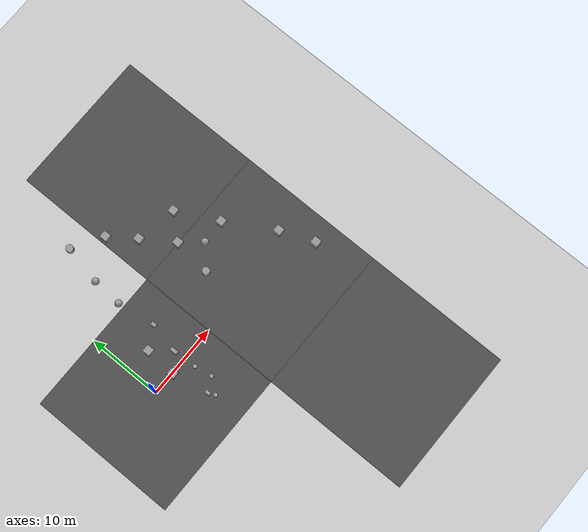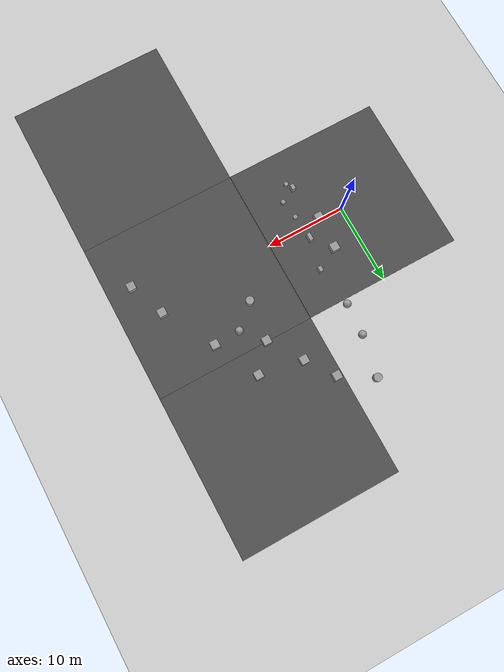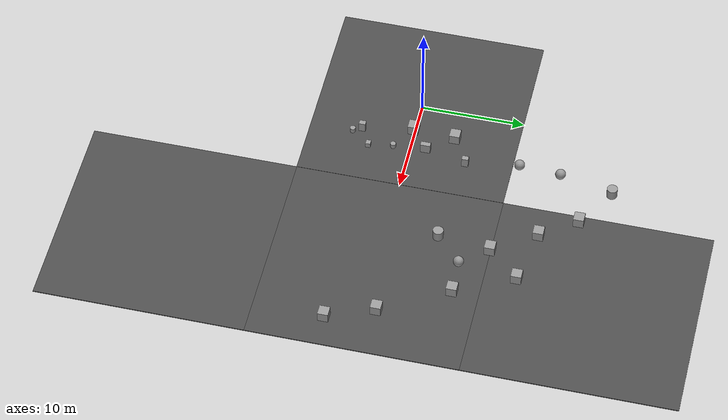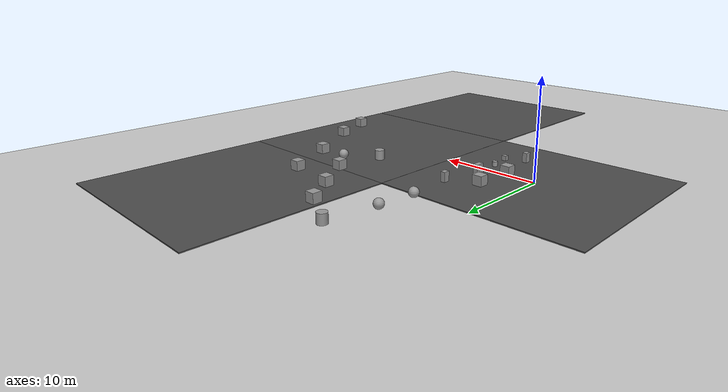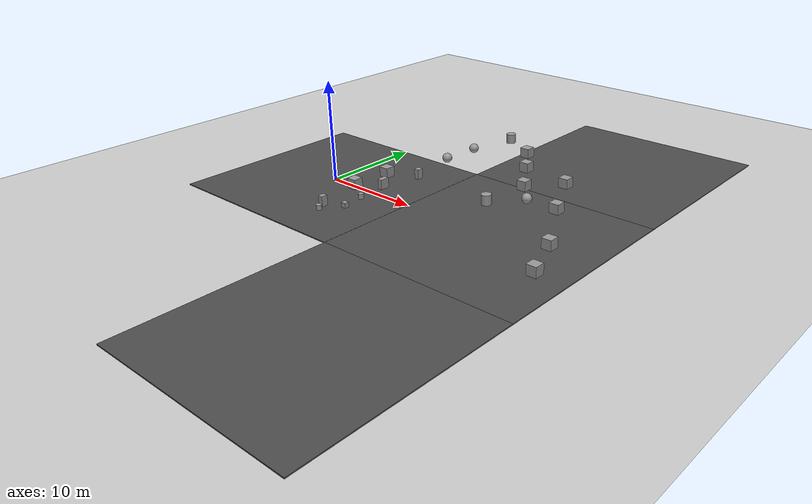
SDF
<sdf version="1.7">
 <world name="default">
  <model name="ground_plane">
   <static>1</static>
   <link name="link">
    <collision name="collision">
     <geometry><plane><normal>0 0 1</normal><size>100 100</size></plane></geometry>
     <surface>
      <contact><collide_bitmask>65535</collide_bitmask></contact>
      <friction><ode><mu>100</mu><mu2>50</mu2></ode></friction>
     </surface>
    </collision>
    <visual name="visual">
     <cast_shadows>0</cast_shadows>
     <geometry><plane><normal>0 0 1</normal><size>100 100</size></plane></geometry>
     <material>
      <script><uri>file://media/materials/scripts/gazebo.material</uri><name>Gazebo/Grey</name></script>
     </material>
    </visual>
   </link>
  </model>
  <model name="asphalt_plane">
   <static>1</static>
   <link name="link">
    <collision name="collision"><geometry><box><size>20 20 0.1</size></box></geometry></collision>
    <visual name="visual">
     <cast_shadows>0</cast_shadows>
     <geometry><box><size>20 20 0.1</size></box></geometry>
     <material>
      <script>
       <uri>model://asphalt_plane/materials/scripts</uri>
       <uri>model://asphalt_plane/materials/textures</uri>
       <name>vrc/asphalt</name>
      </script>
     </material>
    </visual>
   </link>
   <pose>-0.014859 -0.026662 0 0 -0 0</pose>
  </model>
  <model name="asphalt_plane_clone">
   <static>1</static>
   <link name="link">
    <collision name="collision"><geometry><box><size>20 20 0.1</size></box></geometry></collision>
    <visual name="visual">
     <cast_shadows>0</cast_shadows>
     <geometry><box><size>20 20 0.1</size></box></geometry>
     <material>
      <script>
       <uri>model://asphalt_plane/materials/scripts</uri>
       <uri>model://asphalt_plane/materials/textures</uri>
       <name>vrc/asphalt</name>
      </script>
     </material>
    </visual>
   </link>
   <pose>20 0 0 0 -0 0</pose>
  </model>
  <model name="asphalt_plane_clone_0">
   <static>1</static>
   <link name="link">
    <collision name="collision"><geometry><box><size>20 20 0.1</size></box></geometry></collision>
    <visual name="visual">
     <cast_shadows>0</cast_shadows>
     <geometry><box><size>20 20 0.1</size></box></geometry>
     <material>
      <script>
       <uri>model://asphalt_plane/materials/scripts</uri>
       <uri>model://asphalt_plane/materials/textures</uri>
       <name>vrc/asphalt</name>
      </script>
     </material>
    </visual>
   </link>
   <pose>20 -20 0 0 -0 0</pose>
  </model>
  <model name="asphalt_plane_clone_6">
   <static>1</static>
   <link name="link">
    <collision name="collision"><geometry><box><size>20 20 0.1</size></box></geometry></collision>
    <visual name="visual">
     <cast_shadows>0</cast_shadows>
     <geometry><box><size>20 20 0.1</size></box></geometry>
     <material>
      <script>
       <uri>model://asphalt_plane/materials/scripts</uri>
       <uri>model://asphalt_plane/materials/textures</uri>
       <name>vrc/asphalt</name>
      </script>
     </material>
    </visual>
   </link>
   <pose>20 20 0 0 -0 0</pose>
  </model>
  <model name="unit_box">
   <pose>3.3249 3.92528 0.549995 0 1e-05 -1e-06</pose>
   <link name="link">
    <inertial>
     <mass>1</mass>
     <inertia>
      <ixx>0.166667</ixx>
      <ixy>0</ixy>
      <ixz>0</ixz>
      <iyy>0.166667</iyy>
      <iyz>0</iyz>
      <izz>0.166667</izz>
     </inertia>
    </inertial>
    <collision name="collision"><geometry><box><size>1 1 1</size></box></geometry></collision>
    <visual name="visual">
     <geometry><box><size>1 1 1</size></box></geometry>
     <material>
      <script><name>Gazebo/Grey</name><uri>file://media/materials/scripts/gazebo.material</uri></script>
     </material>
    </visual>
   </link>
  </model>
  <model name="unit_cylinder_clone_5">
   <pose>5.50007 -1.65315 0.294825 0 -0 0.001184</pose>
   <link name="link">
    <inertial>
     <mass>1</mass>
     <inertia><ixx>0.145833</ixx><ixy>0</ixy><ixz>0</ixz><iyy>0.145833</iyy><iyz>0</iyz><izz>0.125</izz></inertia>
    </inertial>
    <collision name="collision">
     <geometry><cylinder><radius>0.264047</radius><length>0.48967</length></cylinder></geometry>
    </collision>
    <visual name="visual">
     <geometry><cylinder><radius>0.264047</radius><length>0.48967</length></cylinder></geometry>
     <material>
      <script><name>Gazebo/Grey</name><uri>file://media/materials/scripts/gazebo.material</uri></script>
     </material>
    </visual>
   </link>
  </model>
  <model name="unit_box_0_clone_1_clone_2">
   <pose>5.86986 -3.99988 0.301356 0 -0 0.014538</pose>
   <link name="link">
    <inertial>
     <mass>1</mass>
     <inertia>
      <ixx>0.166667</ixx>
      <ixy>0</ixy>
      <ixz>0</ixz>
      <iyy>0.166667</iyy>
      <iyz>0</iyz>
      <izz>0.166667</izz>
     </inertia>
    </inertial>
    <collision name="collision">
     <geometry><box><size>0.495294 0.467832 0.502712</size></box></geometry>
    </collision>
    <visual name="visual">
     <geometry><box><size>0.495294 0.467832 0.502712</size></box></geometry>
     <material>
      <script><name>Gazebo/Grey</name><uri>file://media/materials/scripts/gazebo.material</uri></script>
     </material>
    </visual>
   </link>
  </model>
  <model name="unit_box_3_clone_3">
   <pose>4 -5 0.55 0 -0 0</pose>
   <link name="link">
    <inertial>
     <mass>1</mass>
     <inertia>
      <ixx>0.166667</ixx>
      <ixy>0</ixy>
      <ixz>0</ixz>
      <iyy>0.166667</iyy>
      <iyz>0</iyz>
      <izz>0.166667</izz>
     </inertia>
    </inertial>
    <collision name="collision"><geometry><box><size>0.473217 0.637104 1</size></box></geometry></collision>
    <visual name="visual">
     <geometry><box><size>0.473217 0.637104 1</size></box></geometry>
     <material>
      <script><name>Gazebo/Grey</name><uri>file://media/materials/scripts/gazebo.material</uri></script>
     </material>
    </visual>
   </link>
  </model>
  <model name="unit_box_4">
   <pose>15.9542 9.93419 0.549996 -7e-06 -0 -1e-05</pose>
   <link name="link">
    <inertial>
     <mass>1</mass>
     <inertia>
      <ixx>0.166667</ixx>
      <ixy>0</ixy>
      <ixz>0</ixz>
      <iyy>0.166667</iyy>
      <iyz>0</iyz>
      <izz>0.166667</izz>
     </inertia>
    </inertial>
    <collision name="collision"><geometry><box><size>1 1 1</size></box></geometry></collision>
    <visual name="visual">
     <geometry><box><size>1 1 1</size></box></geometry>
     <material>
      <script><name>Gazebo/Grey</name><uri>file://media/materials/scripts/gazebo.material</uri></script>
     </material>
    </visual>
   </link>
  </model>
  <model name="unit_sphere">
   <link name="link">
    <inertial>
     <mass>1.41372</mass>
     <inertia>
      <ixx>0.141372</ixx>
      <ixy>0</ixy>
      <ixz>0</ixz>
      <iyy>0.141372</iyy>
      <iyz>0</iyz>
      <izz>0.141372</izz>
     </inertia>
    </inertial>
    <visual name="visual">
     <geometry><sphere><radius>0.5</radius></sphere></geometry>
     <material>
      <script><name>Gazebo/Grey</name><uri>file://media/materials/scripts/gazebo.material</uri></script>
      <shader type="pixel"><normal_map>__default__</normal_map></shader>
     </material>
    </visual>
    <collision name="collision">
     <geometry><sphere><radius>0.5</radius></sphere></geometry>
     <surface>
      <friction>
       <ode><mu>1</mu><mu2>1</mu2><fdir1>0 0 0</fdir1><slip1>0</slip1><slip2>0</slip2></ode>
       <torsional>
        <coefficient>1</coefficient>
        <patch_radius>0</patch_radius>
        <surface_radius>0</surface_radius>
        <use_patch_radius>1</use_patch_radius>
        <ode><slip>0</slip></ode>
       </torsional>
      </friction>
      <bounce><restitution_coefficient>0</restitution_coefficient><threshold>1e+06</threshold></bounce>
      <contact>
       <collide_without_contact>0</collide_without_contact>
       <collide_without_contact_bitmask>1</collide_without_contact_bitmask>
       <collide_bitmask>1</collide_bitmask>
       <ode>
        <soft_cfm>0</soft_cfm>
        <soft_erp>0.2</soft_erp>
        <kp>1e+13</kp>
        <kd>1</kd>
        <max_vel>0.01</max_vel>
        <min_depth>0</min_depth>
       </ode>
       <bullet>
        <split_impulse>1</split_impulse>
        <split_impulse_penetration_threshold>-0.01</split_impulse_penetration_threshold>
        <soft_cfm>0</soft_cfm>
        <soft_erp>0.2</soft_erp>
        <kp>1e+13</kp>
        <kd>1</kd>
       </bullet>
      </contact>
     </surface>
    </collision>
   </link>
   <static>0</static>
   <pose>5.71347 14.6249 0.55 0 -0 0</pose>
  </model>
  <model name="unit_sphere_clone">
   <link name="link">
    <inertial>
     <mass>1.41372</mass>
     <inertia>
      <ixx>0.141372</ixx>
      <ixy>0</ixy>
      <ixz>0</ixz>
      <iyy>0.141372</iyy>
      <iyz>0</iyz>
      <izz>0.141372</izz>
     </inertia>
    </inertial>
    <visual name="visual">
     <geometry><sphere><radius>0.5</radius></sphere></geometry>
     <material>
      <script><name>Gazebo/Grey</name><uri>file://media/materials/scripts/gazebo.material</uri></script>
      <shader type="pixel"><normal_map>__default__</normal_map></shader>
     </material>
    </visual>
    <collision name="collision">
     <geometry><sphere><radius>0.5</radius></sphere></geometry>
     <surface>
      <friction>
       <ode><mu>1</mu><mu2>1</mu2><fdir1>0 0 0</fdir1><slip1>0</slip1><slip2>0</slip2></ode>
       <torsional>
        <coefficient>1</coefficient>
        <patch_radius>0</patch_radius>
        <surface_radius>0</surface_radius>
        <use_patch_radius>1</use_patch_radius>
        <ode><slip>0</slip></ode>
       </torsional>
      </friction>
      <bounce><restitution_coefficient>0</restitution_coefficient><threshold>1e+06</threshold></bounce>
      <contact>
       <collide_without_contact>0</collide_without_contact>
       <collide_without_contact_bitmask>1</collide_without_contact_bitmask>
       <collide_bitmask>1</collide_bitmask>
       <ode>
        <soft_cfm>0</soft_cfm>
        <soft_erp>0.2</soft_erp>
        <kp>1e+13</kp>
        <kd>1</kd>
        <max_vel>0.01</max_vel>
        <min_depth>0</min_depth>
       </ode>
       <bullet>
        <split_impulse>1</split_impulse>
        <split_impulse_penetration_threshold>-0.01</split_impulse_penetration_threshold>
        <soft_cfm>0</soft_cfm>
        <soft_erp>0.2</soft_erp>
        <kp>1e+13</kp>
        <kd>1</kd>
       </bullet>
      </contact>
     </surface>
    </collision>
   </link>
   <static>0</static>
   <pose>5.44361 10.6261 0.55 0 -0 0</pose>
  </model>
  <model name="unit_cylinder_0">
   <pose>15.381 4.88172 0.54999 -0 -0 -1e-06</pose>
   <link name="link">
    <inertial>
     <mass>1</mass>
     <inertia><ixx>0.145833</ixx><ixy>0</ixy><ixz>0</ixz><iyy>0.145833</iyy><iyz>0</iyz><izz>0.125</izz></inertia>
    </inertial>
    <collision name="collision">
     <geometry><cylinder><radius>0.5</radius><length>1</length></cylinder></geometry>
    </collision>
    <visual name="visual">
     <geometry><cylinder><radius>0.5</radius><length>1</length></cylinder></geometry>
     <material>
      <script><name>Gazebo/Grey</name><uri>file://media/materials/scripts/gazebo.material</uri></script>
     </material>
    </visual>
   </link>
  </model>
  <model name="unit_cylinder_1">
   <pose>6.78698 19.7557 0.54999 0 0 -0.000972</pose>
   <link name="link">
    <inertial>
     <mass>1</mass>
     <inertia><ixx>0.145833</ixx><ixy>0</ixy><ixz>0</ixz><iyy>0.145833</iyy><iyz>0</iyz><izz>0.125</izz></inertia>
    </inertial>
    <collision name="collision">
     <geometry><cylinder><radius>0.5</radius><length>1</length></cylinder></geometry>
    </collision>
    <visual name="visual">
     <geometry><cylinder><radius>0.5</radius><length>1</length></cylinder></geometry>
     <material>
      <script><name>Gazebo/Grey</name><uri>file://media/materials/scripts/gazebo.material</uri></script>
     </material>
    </visual>
   </link>
  </model>
  <model name="unit_sphere_0">
   <pose>18.1703 7.41217 0.55 0 -0 0</pose>
   <link name="link">
    <inertial>
     <mass>1</mass>
     <inertia><ixx>0.1</ixx><ixy>0</ixy><ixz>0</ixz><iyy>0.1</iyy><iyz>0</iyz><izz>0.1</izz></inertia>
    </inertial>
    <collision name="collision"><geometry><sphere><radius>0.5</radius></sphere></geometry></collision>
    <visual name="visual">
     <geometry><sphere><radius>0.5</radius></sphere></geometry>
     <material>
      <script><name>Gazebo/Grey</name><uri>file://media/materials/scripts/gazebo.material</uri></script>
     </material>
    </visual>
   </link>
  </model>
  <model name="unit_box_6">
   <pose>25.1293 1.23622 0.549995 0 1e-05 -3e-06</pose>
   <link name="link">
    <inertial>
     <mass>1</mass>
     <inertia>
      <ixx>0.166667</ixx>
      <ixy>0</ixy>
      <ixz>0</ixz>
      <iyy>0.166667</iyy>
      <iyz>0</iyz>
      <izz>0.166667</izz>
     </inertia>
    </inertial>
    <collision name="collision"><geometry><box><size>1 1 1</size></box></geometry></collision>
    <visual name="visual">
     <geometry><box><size>1 1 1</size></box></geometry>
     <material>
      <script><name>Gazebo/Grey</name><uri>file://media/materials/scripts/gazebo.material</uri></script>
     </material>
    </visual>
   </link>
  </model>
  <model name="unit_box_4_clone_clone">
   <pose>13.2189 13.9745 0.549995 9e-06 1e-06 -3e-06</pose>
   <link name="link">
    <inertial>
     <mass>1</mass>
     <inertia>
      <ixx>0.166667</ixx>
      <ixy>0</ixy>
      <ixz>0</ixz>
      <iyy>0.166667</iyy>
      <iyz>0</iyz>
      <izz>0.166667</izz>
     </inertia>
    </inertial>
    <collision name="collision"><geometry><box><size>1 1 1</size></box></geometry></collision>
    <visual name="visual">
     <geometry><box><size>1 1 1</size></box></geometry>
     <material>
      <script><name>Gazebo/Grey</name><uri>file://media/materials/scripts/gazebo.material</uri></script>
     </material>
    </visual>
   </link>
  </model>
  <model name="unit_box_4_clone_clone_0">
   <pose>10.7891 17.3515 0.549995 9e-06 1e-06 -3e-06</pose>
   <link name="link">
    <inertial>
     <mass>1</mass>
     <inertia>
      <ixx>0.166667</ixx>
      <ixy>0</ixy>
      <ixz>0</ixz>
      <iyy>0.166667</iyy>
      <iyz>0</iyz>
      <izz>0.166667</izz>
     </inertia>
    </inertial>
    <collision name="collision"><geometry><box><size>1 1 1</size></box></geometry></collision>
    <visual name="visual">
     <geometry><box><size>1 1 1</size></box></geometry>
     <material>
      <script><name>Gazebo/Grey</name><uri>file://media/materials/scripts/gazebo.material</uri></script>
     </material>
    </visual>
   </link>
  </model>
  <model name="unit_box_4_clone_clone_1">
   <pose>21.4596 7.50864 0.549995 9e-06 1e-06 -3e-06</pose>
   <link name="link">
    <inertial>
     <mass>1</mass>
     <inertia>
      <ixx>0.166667</ixx>
      <ixy>0</ixy>
      <ixz>0</ixz>
      <iyy>0.166667</iyy>
      <iyz>0</iyz>
      <izz>0.166667</izz>
     </inertia>
    </inertial>
    <collision name="collision"><geometry><box><size>1 1 1</size></box></geometry></collision>
    <visual name="visual">
     <geometry><box><size>1 1 1</size></box></geometry>
     <material>
      <script><name>Gazebo/Grey</name><uri>file://media/materials/scripts/gazebo.material</uri></script>
     </material>
    </visual>
   </link>
  </model>
  <model name="unit_box_4_clone_clone_2">
   <pose>18.6991 12.9908 0.549995 0 1e-05 -3e-06</pose>
   <link name="link">
    <inertial>
     <mass>1</mass>
     <inertia>
      <ixx>0.166667</ixx>
      <ixy>0</ixy>
      <ixz>0</ixz>
      <iyy>0.166667</iyy>
      <iyz>0</iyz>
      <izz>0.166667</izz>
     </inertia>
    </inertial>
    <collision name="collision"><geometry><box><size>1 1 1</size></box></geometry></collision>
    <visual name="visual">
     <geometry><box><size>1 1 1</size></box></geometry>
     <material>
      <script><name>Gazebo/Grey</name><uri>file://media/materials/scripts/gazebo.material</uri></script>
     </material>
    </visual>
   </link>
  </model>
  <model name="unit_box_4_clone_clone_3">
   <pose>26.913 -3.25658 0.549995 0 1e-05 -3e-06</pose>
   <link name="link">
    <inertial>
     <mass>1</mass>
     <inertia>
      <ixx>0.166667</ixx>
      <ixy>0</ixy>
      <ixz>0</ixz>
      <iyy>0.166667</iyy>
      <iyz>0</iyz>
      <izz>0.166667</izz>
     </inertia>
    </inertial>
    <collision name="collision"><geometry><box><size>1 1 1</size></box></geometry></collision>
    <visual name="visual">
     <geometry><box><size>1 1 1</size></box></geometry>
     <material>
      <script><name>Gazebo/Grey</name><uri>file://media/materials/scripts/gazebo.material</uri></script>
     </material>
    </visual>
   </link>
  </model>
  <model name="unit_box_3_clone_0_clone">
   <pose>5.30107 1.46676 0.55 0 -0 0</pose>
   <link name="link">
    <inertial>
     <mass>1</mass>
     <inertia>
      <ixx>0.166667</ixx>
      <ixy>0</ixy>
      <ixz>0</ixz>
      <iyy>0.166667</iyy>
      <iyz>0</iyz>
      <izz>0.166667</izz>
     </inertia>
    </inertial>
    <collision name="collision"><geometry><box><size>0.473217 0.950732 1</size></box></geometry></collision>
    <visual name="visual">
     <geometry><box><size>0.473217 0.950732 1</size></box></geometry>
     <material>
      <script><name>Gazebo/Grey</name><uri>file://media/materials/scripts/gazebo.material</uri></script>
     </material>
    </visual>
   </link>
  </model>
  <model name="unit_box_1_clone_0">
   <pose>3.09598 -0.182013 0.549995 0 1e-05 -1e-06</pose>
   <link name="link">
    <inertial>
     <mass>1</mass>
     <inertia>
      <ixx>0.166667</ixx>
      <ixy>0</ixy>
      <ixz>0</ixz>
      <iyy>0.166667</iyy>
      <iyz>0</iyz>
      <izz>0.166667</izz>
     </inertia>
    </inertial>
    <collision name="collision"><geometry><box><size>1 1 1</size></box></geometry></collision>
    <visual name="visual">
     <geometry><box><size>1 1 1</size></box></geometry>
     <material>
      <script><name>Gazebo/Grey</name><uri>file://media/materials/scripts/gazebo.material</uri></script>
     </material>
    </visual>
   </link>
  </model>
  <model name="unit_cylinder_clone_9_clone">
   <pose>4.42949 -5.86142 0.294834 -3e-06 4e-06 0.00115</pose>
   <link name="link">
    <inertial>
     <mass>1</mass>
     <inertia><ixx>0.145833</ixx><ixy>0</ixy><ixz>0</ixz><iyy>0.145833</iyy><iyz>0</iyz><izz>0.125</izz></inertia>
    </inertial>
    <collision name="collision">
     <geometry><cylinder><radius>0.264047</radius><length>0.48967</length></cylinder></geometry>
    </collision>
    <visual name="visual">
     <geometry><cylinder><radius>0.264047</radius><length>0.48967</length></cylinder></geometry>
     <material>
      <script><name>Gazebo/Grey</name><uri>file://media/materials/scripts/gazebo.material</uri></script>
     </material>
    </visual>
   </link>
  </model>
  <model name="unit_box_3_clone_clone">
   <pose>6.17067 5.50514 0.55 0 -0 0</pose>
   <link name="link">
    <inertial>
     <mass>1</mass>
     <inertia>
      <ixx>0.166667</ixx>
      <ixy>0</ixy>
      <ixz>0</ixz>
      <iyy>0.166667</iyy>
      <iyz>0</iyz>
      <izz>0.166667</izz>
     </inertia>
    </inertial>
    <collision name="collision"><geometry><box><size>0.473217 0.637104 1</size></box></geometry></collision>
    <visual name="visual">
     <geometry><box><size>0.473217 0.637104 1</size></box></geometry>
     <material>
      <script><name>Gazebo/Grey</name><uri>file://media/materials/scripts/gazebo.material</uri></script>
     </material>
    </visual>
   </link>
  </model>
 </world>
</sdf>
